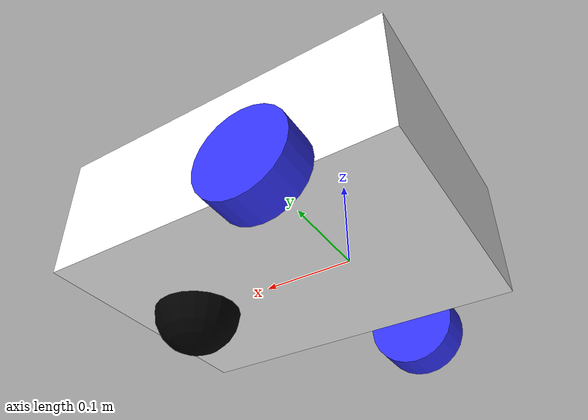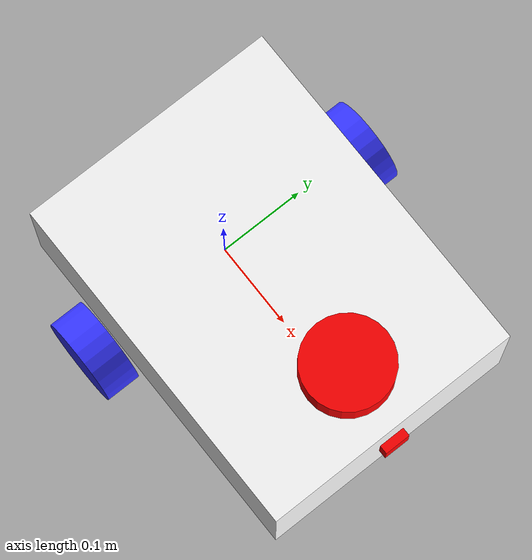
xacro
<?xml version="1.0"?>
<robot xmlns:xacro="http://www.ros.org/wiki/xacro"  name="robot">

    <!-- Example link -->
    <xacro:include filename="robot_core.xacro"/>
    <xacro:include filename="gazebo_control.xacro"/>
    <xacro:include filename="lidar.xacro"/>
        <xacro:include filename="depth_camera.xacro"/>

</robot>

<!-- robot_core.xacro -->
<robot xmlns:xacro="http://www.ros.org/wiki/xacro" >

    <xacro:include filename="inertial_macros.xacro"/>

    <material name="white">
        <color rgba="1 1 1 1"/>
    </material>

    <material name="orange">
        <color rgba="1 0.3 0.1 1"/>
    </material>

    <material name="blue">
        <color rgba="0.2 0.2 1 1"/>
    </material>

    <material name="black">
        <color rgba="0 0 0 1"/>
    </material>

    <material name="red">
        <color rgba="1 0 0 1"/>
    </material>

    <!-- Base link -->
    <link name="base_link">
    </link>

    <!-- chassis link -->
    <joint name="chassis_joint" type="fixed">
        <parent link="base_link"/>
        <child link="chassis"/>
        <origen xyz="-0.1 0 0"/>
    </joint>

    <link name="chassis">
        <visual>
            <origin xyz="0.075 0 0.075" rpy="0 0 0"/>
            <geometry>
                <box size="0.4 0.3 0.15"/>
            </geometry>
            <material name="white"/>
        </visual>

        <collision>
            <origin xyz="0.075 0 0.075" rpy="0 0 0"/>
            <geometry>
                <box size="0.4 0.3 0.15"/>
            </geometry>
        </collision>
        <xacro:inertial_box mass="0.5" x="0.3" y="0.3" z="0.15">
            <origen xyz="0.15 0 0.075" rpy="0 0 0"/>
        </xacro:inertial_box>

    </link>

    <gazebo reference="chassis">
        <material>Gazebo/White</material>
    </gazebo>

    <!-- Left wheel Link -->
    <joint name="left_wheel_joint" type="continuous">
        <parent link="base_link"/>
        <child link="left_wheel"/>
        <origin xyz="0.0 0.175 0.0" rpy="-${pi/2} 0 0" />
        <axis xyz="0 0 1"/>
    </joint>

    <link name="left_wheel">
        <visual>
            <geometry>
                <cylinder radius="0.05" length="0.04"/>
            </geometry>
            <material name="blue"/>
        </visual>

        <collision>
            <geometry>
                <cylinder radius="0.05" length="0.04"/>
            </geometry>
        </collision>
        <xacro:inertial_cylinder mass="0.1" length="0.04" radius="0.05">
            <origen xyz="0 0 0" rpy="0 0 0"/>
        </xacro:inertial_cylinder>
    </link>
    <gazebo reference="left_wheel">
        <material>Gazebo/Blue</material>
    </gazebo>

    <!-- Right wheel Link -->
    <joint name="right_wheel_joint" type="continuous">
        <parent link="base_link"/>
        <child link="right_wheel"/>
        <origin xyz="0.0 -0.175 0.0" rpy="${pi/2} 0 0" />
        <axis xyz="0 0 -1"/>
    </joint>

    <link name="right_wheel">
        <visual>

            <geometry>
                <cylinder radius="0.05" length="0.04"/>
            </geometry>
            <material name="blue"/>
        </visual>
        <collision>
            <geometry>
                <cylinder radius="0.05" length="0.04"/>
            </geometry>
        </collision>
        <xacro:inertial_cylinder mass="0.1" length="0.04" radius="0.05">
            <origen xyz="0 0 0" rpy="0 0 0"/>
        </xacro:inertial_cylinder>
    </link>

    <gazebo reference="right_wheel">
        <material>Gazebo/Blue</material>
    </gazebo>

    <!-- Caster wheel Link -->
    <joint name="caser_wheel_joint" type="fixed">
        <parent link="chassis"/>
        <child link="caster_wheel"/>
        <origin xyz="0.2 0 0 " rpy="0 0 0" />
    </joint>

    <link name="caster_wheel">
        <visual>
            <geometry>
                <sphere radius="0.05"/>
            </geometry>
            <material name="black"/>
        </visual>
        <collision>
            <geometry>
                <sphere radius="0.05"/>
            </geometry>
            <material name="black"/>
        </collision>
        <xacro:inertial_sphere mass="0.1" radius="0.05">
            <origen xyz="0 0 0" rpy="0 0 0"/>
        </xacro:inertial_sphere>
    </link>
    <gazebo reference="caster_wheel">
        <material>Gazebo/Black</material>
        <mu1 value="0.3"/>
        <mu2 value="0.1"/>
    </gazebo>

</robot>

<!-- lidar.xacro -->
<robot xmlns:xacro="http://www.ros.org/wiki/xacro" >

    <joint name="laser_joint" type="fixed">
        <parent link="chassis"/>
        <child link="laser_frame"/>
        <origin xyz="0.2 0 0.175" rpy="0 0 0"/>
    </joint>

    <link name="laser_frame">
        <visual>
            <geometry>
                <cylinder radius="0.05" length="0.04"/>
            </geometry>
            <material name="red"/>
        </visual>
        <collision>
            <geometry>
                <cylinder radius="0.05" length="0.04"/>
            </geometry>
        </collision>
        <xacro:inertial_cylinder mass="0.1" length="0.04" radius="0.05">
            <origen xyz="0 0 0" rpy="0 0 0"/>
        </xacro:inertial_cylinder>
    </link>

    <gazebo reference="laser_frame">
        <material>Gazebo/Red</material>

        <sensor name="laser" type="ray">
            <pose> 0 0 0 0 0 0 </pose>
            <visualize>true</visualize>
            <update_rate>10</update_rate>
            <ray>
                <scan>
                    <horizontal>
                        <samples>360</samples>
                        <min_angle>-3.14</min_angle>
                        <max_angle>3.14</max_angle>
                    </horizontal>
                </scan>
                <range>
                    <min>0.3</min>
                    <max>12</max>
                </range>
            </ray>
            <plugin name="laser_controller" filename="libgazebo_ros_ray_sensor.so">
                <ros>
                    <argument>~/out:=scan</argument>
                </ros>
                <output_type>sensor_msgs/LaserScan</output_type>
                <frame_name>laser_frame</frame_name>
            </plugin>
        </sensor>
    </gazebo>
</robot>

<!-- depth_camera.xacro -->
<robot xmlns:xacro="http://www.ros.org/wiki/xacro" >

    <joint name="camera_joint" type="fixed">
        <parent link="chassis"/>
        <child link="camera_link"/>
        <origin xyz="0.28 0 0.08" rpy="0 0 0"/>
    </joint>

    <link name="camera_link">
        <visual>
            <geometry>
                <box size="0.01 0.03 0.03"/>
            </geometry>
            <material name="red"/>
        </visual>
    </link>

    <joint name="camera_optical_joint" type="fixed">
        <parent link="camera_link"/>
        <child link="camera_link_optical"/>
        <origin xyz="0.28 0 0.08" rpy="${-pi/2} 0 ${-pi/2}"/>
    </joint>
    <link name="camera_link_optical">

    </link>

    <gazebo reference="camera_link">
        <material>Gazebo/Red</material>
        <sensor name="camera" type="depth">
            <pose> 0 0 0 0 0 0 </pose>
            <visualize>true</visualize>
            <update_rate>10</update_rate>
            <camera>
                <horizontal_fov>1.089</horizontal_fov>
                <image>
                    <format>B8G8R8</format>
                    <width>640</width>
                    <height>480</height>
                </image>
                <clip>
                    <near>0.05</near>
                    <far>8.0</far>
                </clip>
            </camera>
            <plugin name="camera_controller" filename="libgazebo_ros_camera.so">
                <frame_name>camera_link_optical</frame_name>
                <min_depth>0.1</min_depth>
                <max_depht>100</max_depht>
            </plugin>
        </sensor>

    </gazebo>
</robot>
